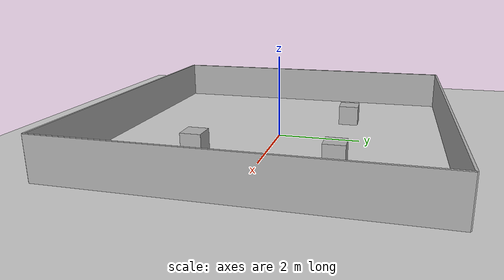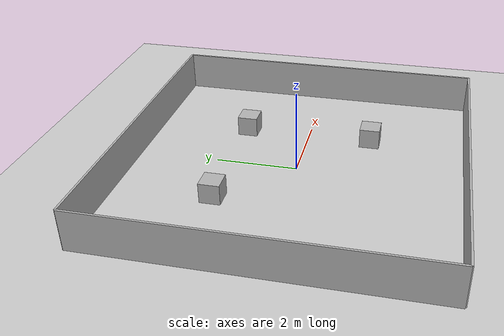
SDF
<sdf version='1.10'>
  <world name='world_for_simulation_robot'>
    <physics name='1ms' type='ignored'>
      <max_step_size>0.001</max_step_size>
      <real_time_factor>1</real_time_factor>
      <real_time_update_rate>1000</real_time_update_rate>
    </physics>
    <plugin name='gz::sim::systems::Physics' filename='gz-sim-physics-system'/>
    <plugin name='gz::sim::systems::UserCommands' filename='gz-sim-user-commands-system'/>
    <plugin name='gz::sim::systems::SceneBroadcaster' filename='gz-sim-scene-broadcaster-system'/>
    <plugin name='gz::sim::systems::Contact' filename='gz-sim-contact-system'/>
    <gravity>0 0 -9.8000000000000007</gravity>
    <magnetic_field>5.5688999999999998e-06 2.2875799999999999e-05 -8.2388800000000002e-05</magnetic_field>
    <atmosphere type='adiabatic'/>
    <scene>
      <ambient>0.800000006 0.800000006 0.800000006 1</ambient>
      <background>0.699999988 0.699999988 0.699999988 1</background>
      <shadows>true</shadows>
    </scene>
    <model name='ground_plane'>
      <static>true</static>
      <link name='link'>
        <collision name='collision'>
          <geometry>
            <plane>
              <normal>0 0 1</normal>
              <size>100 100</size>
            </plane>
          </geometry>
          <surface>
            <friction>
              <ode/>
            </friction>
            <bounce/>
            <contact/>
          </surface>
        </collision>
        <visual name='visual'>
          <geometry>
            <plane>
              <normal>0 0 1</normal>
              <size>100 100</size>
            </plane>
          </geometry>
          <material>
            <ambient>0.800000012 0.800000012 0.800000012 1</ambient>
            <diffuse>0.800000012 0.800000012 0.800000012 1</diffuse>
            <specular>0.800000012 0.800000012 0.800000012 1</specular>
          </material>
        </visual>
        <pose>0 0 0 0 0 0</pose>
        <inertial>
          <pose>0 0 0 0 0 0</pose>
          <mass>1</mass>
          <inertia>
            <ixx>1</ixx>
            <ixy>0</ixy>
            <ixz>0</ixz>
            <iyy>1</iyy>
            <iyz>0</iyz>
            <izz>1</izz>
          </inertia>
        </inertial>
        <enable_wind>false</enable_wind>
      </link>
      <pose>0 0 0 0 0 0</pose>
      <self_collide>false</self_collide>
    </model>
    <model name='east_wall'>
      <pose> 4 0 0.5 0 0 1.5708</pose>
      <link name='east_wall_link'>
        <inertial>
          <inertia>
            <ixx>1</ixx>
            <ixy>0</ixy>
            <ixz>0</ixz>
            <iyy>1</iyy>
            <iyz>0</iyz>
            <izz>1</izz>
          </inertia>
          <mass>10</mass>
          <pose>0 0 0 0 0 0</pose>
        </inertial>
        <collision name='east_wall_collision'>
          <geometry>
            <box>
              <size>8 0.05 1</size>
            </box>
          </geometry>
          <surface>
            <friction>
              <ode/>
            </friction>
            <bounce/>
            <contact/>
          </surface>
        </collision>
        <visual name='east_wall_visual'>
          <geometry>
            <box>
              <size>8 0.05 1</size>
            </box>
          </geometry>
          <material>
            <ambient>0.300000012 0.300000012 0.300000012 1</ambient>
            <diffuse>0.699999988 0.699999988 0.699999988 1</diffuse>
            <specular>1 1 1 1</specular>
          </material>
        </visual>
        <pose>0 0 0 0 0 0</pose>
        <enable_wind>false</enable_wind>
      </link>
      <static>false</static>
      <self_collide>false</self_collide>
    </model>

 <model name='west_wall'>
      <pose> -4 0 0.5 0 0 1.5708</pose>
      <link name='west_wall_link'>
        <inertial>
          <inertia>
            <ixx>1</ixx>
            <ixy>0</ixy>
            <ixz>0</ixz>
            <iyy>1</iyy>
            <iyz>0</iyz>
            <izz>1</izz>
          </inertia>
          <mass>10</mass>
          <pose>0 0 0 0 0 0</pose>
        </inertial>
        <collision name='west_wall_collision'>
          <geometry>
            <box>
              <size>8 0.05 1</size>
            </box>
          </geometry>
          <surface>
            <friction>
              <ode/>
            </friction>
            <bounce/>
            <contact/>
          </surface>
        </collision>
        <visual name='west_wall_visual'>
          <geometry>
            <box>
              <size>8 0.05 1</size>
            </box>
          </geometry>
          <material>
            <ambient>0.300000012 0.300000012 0.300000012 1</ambient>
            <diffuse>0.699999988 0.699999988 0.699999988 1</diffuse>
            <specular>1 1 1 1</specular>
          </material>
        </visual>
        <pose>0 0 0 0 0 0</pose>
        <enable_wind>false</enable_wind>
      </link>
      <static>false</static>
      <self_collide>false</self_collide>
    </model>

   <model name='south_wall'>
      <pose>0 -4 0.5 0 0 0</pose>
      <link name='south_wall_link'>
        <inertial>
          <inertia>
            <ixx>1</ixx>
            <ixy>0</ixy>
            <ixz>0</ixz>
            <iyy>1</iyy>
            <iyz>0</iyz>
            <izz>1</izz>
          </inertia>
          <mass>10</mass>
          <pose>0 0 0 0 0 0</pose>
        </inertial>
        <collision name='south_wall_collision'>
          <geometry>
            <box>
              <size>8 0.05 1</size>
            </box>
          </geometry>
          <surface>
            <friction>
              <ode/>
            </friction>
            <bounce/>
            <contact/>
          </surface>
        </collision>
        <visual name='south_wall_visual'>
          <geometry>
            <box>
              <size>8 0.05 1</size>
            </box>
          </geometry>
          <material>
            <ambient>0.300000012 0.300000012 0.300000012 1</ambient>
            <diffuse>0.699999988 0.699999988 0.699999988 1</diffuse>
            <specular>1 1 1 1</specular>
          </material>
        </visual>
        <pose>0 0 0 0 0 0</pose>
        <enable_wind>false</enable_wind>
      </link>
      <static>false</static>
      <self_collide>false</self_collide>
    </model>

    <model name='north_wall'>
      <pose>0 4 0.5 0 0 0</pose>
      <link name='north_wall_link'>
        <inertial>
          <inertia>
            <ixx>1</ixx>
            <ixy>0</ixy>
            <ixz>0</ixz>
            <iyy>1</iyy>
            <iyz>0</iyz>
            <izz>1</izz>
          </inertia>
          <mass>10</mass>
          <pose>0 0 0 0 0 0</pose>
        </inertial>
        <collision name='north_wall_collision'>
          <geometry>
            <box>
              <size>8 0.05 1</size>
            </box>
          </geometry>
          <surface>
            <friction>
              <ode/>
            </friction>
            <bounce/>
            <contact/>
          </surface>
        </collision>
        <visual name='north_wall_visual'>
          <geometry>
            <box>
              <size>8 0.05 1</size>
            </box>
          </geometry>
          <material>
            <ambient>0.300000012 0.300000012 0.300000012 1</ambient>
            <diffuse>0.699999988 0.699999988 0.699999988 1</diffuse>
            <specular>1 1 1 1</specular>
          </material>
        </visual>
        <pose>0 0 0 0 0 0</pose>
        <enable_wind>false</enable_wind>
      </link>
      <static>false</static>
      <self_collide>false</self_collide>
    </model>

    <model name='kitchen'>
      <pose>-1.6 1.6 0.25 0 0 0</pose>
      <link name='kitchen_link'>
        <inertial>
          <inertia>
            <ixx>1</ixx>
            <ixy>0</ixy>
            <ixz>0</ixz>
            <iyy>1</iyy>
            <iyz>0</iyz>
            <izz>1</izz>
          </inertia>
          <mass>10</mass>
          <pose>0 0 0 0 0 0</pose>
        </inertial>
        <collision name='kitchen_collision'>
          <geometry>
            <box>
              <size>0.5 0.5 0.5</size>
            </box>
          </geometry>
          <surface>
            <friction>
              <ode/>
            </friction>
            <bounce/>
            <contact/>
          </surface>
        </collision>
        <visual name='kitchen_visual'>
          <geometry>
            <box>
              <size>0.5 0.5 0.5</size>
            </box>
          </geometry>
          <material>
            <ambient>0.300000012 0.300000012 0.300000012 1</ambient>
            <diffuse>0.699999988 0.699999988 0.699999988 1</diffuse>
            <specular>1 1 1 1</specular>
          </material>
        </visual>
        <pose>0 0 0 0 0 0</pose>
        <enable_wind>false</enable_wind>
      </link>
      <static>false</static>
      <self_collide>false</self_collide>
    </model>

<model name='Table_1'>
      <pose>1.6 1.6 0.25 0 0 0</pose>
      <link name='Table_1_link'>
        <inertial>
          <inertia>
            <ixx>1</ixx>
            <ixy>0</ixy>
            <ixz>0</ixz>
            <iyy>1</iyy>
            <iyz>0</iyz>
            <izz>1</izz>
          </inertia>
          <mass>10</mass>
          <pose>0 0 0 0 0 0</pose>
        </inertial>
        <collision name='Table_1_collision'>
          <geometry>
            <box>
              <size>0.5 0.5 0.5</size>
            </box>
          </geometry>
          <surface>
            <friction>
              <ode/>
            </friction>
            <bounce/>
            <contact/>
          </surface>
        </collision>
        <visual name='Table_1_visual'>
          <geometry>
            <box>
              <size>0.5 0.5 0.5</size>
            </box>
          </geometry>
          <material>
            <ambient>0.300000012 0.300000012 0.300000012 1</ambient>
            <diffuse>0.699999988 0.699999988 0.699999988 1</diffuse>
            <specular>1 1 1 1</specular>
          </material>
        </visual>
        <pose>0 0 0 0 0 0</pose>
        <enable_wind>false</enable_wind>
      </link>
      <static>false</static>
      <self_collide>false</self_collide>
    </model>

<model name='Table_2'>
      <pose>1.6 -1.6 0.25 0 0 0</pose>
      <link name='Table_2_link'>
        <inertial>
          <inertia>
            <ixx>1</ixx>
            <ixy>0</ixy>
            <ixz>0</ixz>
            <iyy>1</iyy>
            <iyz>0</iyz>
            <izz>1</izz>
          </inertia>
          <mass>10</mass>
          <pose>0 0 0 0 0 0</pose>
        </inertial>
        <collision name='Table_2_collision'>
          <geometry>
            <box>
              <size>0.5 0.5 0.5</size>
            </box>
          </geometry>
          <surface>
            <friction>
              <ode/>
            </friction>
            <bounce/>
            <contact/>
          </surface>
        </collision>
        <visual name='Table_2_visual'>
          <geometry>
            <box>
              <size>0.5 0.5 0.5</size>
            </box>
          </geometry>
          <material>
            <ambient>0.300000012 0.300000012 0.300000012 1</ambient>
            <diffuse>0.699999988 0.699999988 0.699999988 1</diffuse>
            <specular>1 1 1 1</specular>
          </material>
        </visual>
        <pose>0 0 0 0 0 0</pose>
        <enable_wind>false</enable_wind>
      </link>
      <static>false</static>
      <self_collide>false</self_collide>
    </model>

    <light name='sun' type='directional'>
      <pose>0 0 10 0 0 0</pose>
      <cast_shadows>true</cast_shadows>
      <intensity>1</intensity>
      <direction>-0.5 0.10000000000000001 -0.90000000000000002</direction>
      <diffuse>0.800000012 0.800000012 0.800000012 1</diffuse>
      <specular>0.200000003 0.200000003 0.200000003 1</specular>
      <attenuation>
        <range>1000</range>
        <linear>0.01</linear>
        <constant>0.90000000000000002</constant>
        <quadratic>0.001</quadratic>
      </attenuation>
      <spot>
        <inner_angle>0</inner_angle>
        <outer_angle>0</outer_angle>
        <falloff>0</falloff>
      </spot>
    </light>
  </world>
</sdf>
